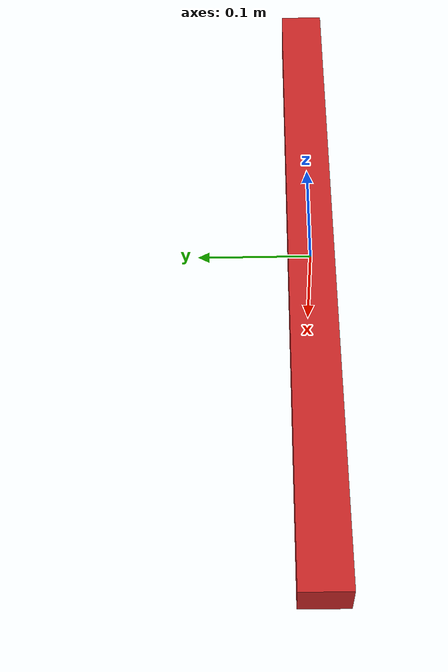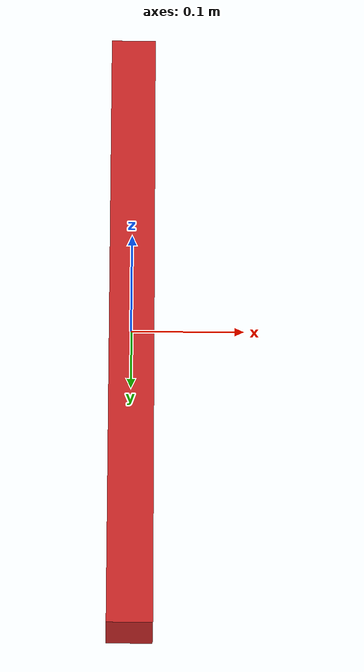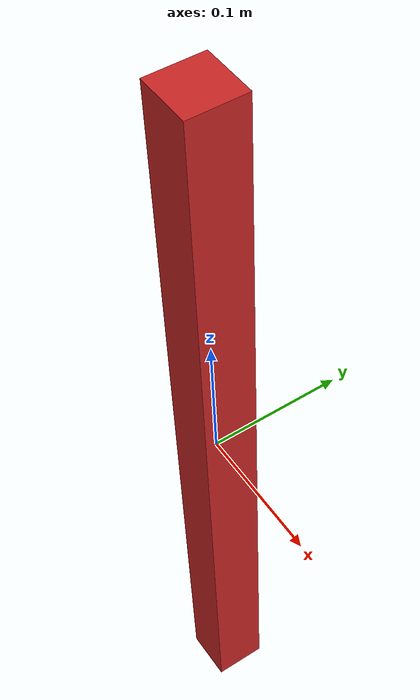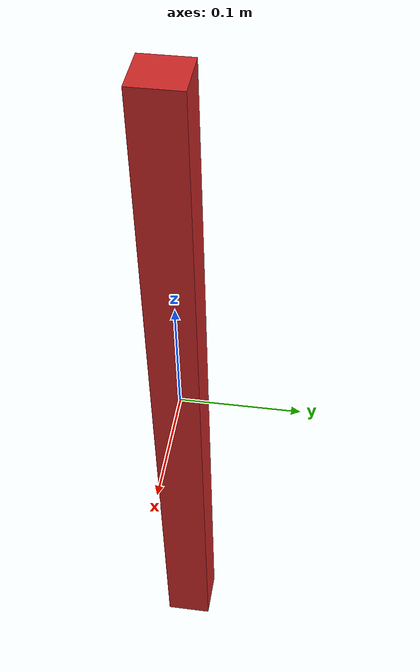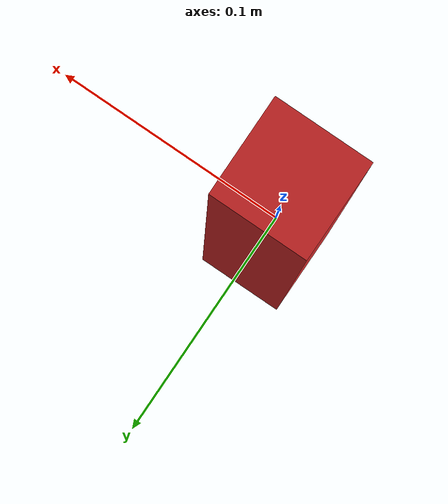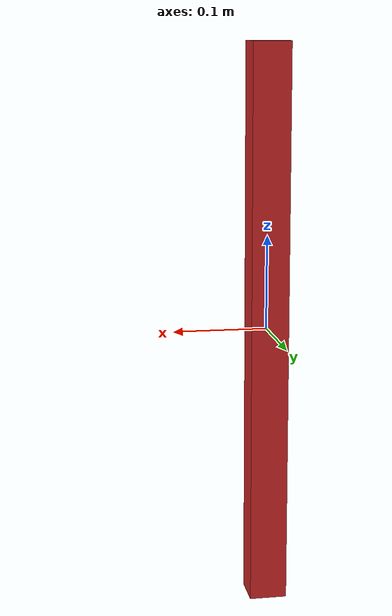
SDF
<sdf version='1.6'>
  <model name='box'>
    <link name='box_link'>
      <pose frame=''>0 0 0 0 -0 0</pose>
      <inertial>
        <pose frame=''>0 0 0 0 -0 0</pose>
        <mass>1</mass>
        <inertia>
          <ixx>1</ixx>
          <ixy>0.01</ixy>
          <ixz>0.01</ixz>
          <iyy>1</iyy>
          <iyz>0.01</iyz>
          <izz>1</izz>
        </inertia>
      </inertial>
      <collision name='box_collision'>
        <pose frame=''>0 0 0 0 -0 0</pose>
        <geometry>
          <box>
            <size>0.04 0.04 0.6</size>
          </box>
        </geometry>
        <surface>
          <contact>
            <ode>
              <kp>1e+06</kp>
              <kd>1</kd>
              <min_depth>0.001</min_depth>
            </ode>
          </contact>
          <friction>
            <ode>
              <mu>1</mu>
              <mu2>1</mu2>
            </ode>
          </friction>
        </surface>
      </collision>
      <visual name='box_visual'>
        <pose frame=''>0 0 0 0 -0 0</pose>
        <geometry>
          <box>
            <size>0.04 0.04 0.6</size>
          </box>
        </geometry>
        <material>
          <script>
            <name>Gazebo/Red</name>
            <uri>file://media/materials/scripts/gazebo.material</uri>
          </script>
        </material>
      </visual>
      <gravity>1</gravity>
      <velocity_decay/>
    </link>
  </model>
</sdf>
